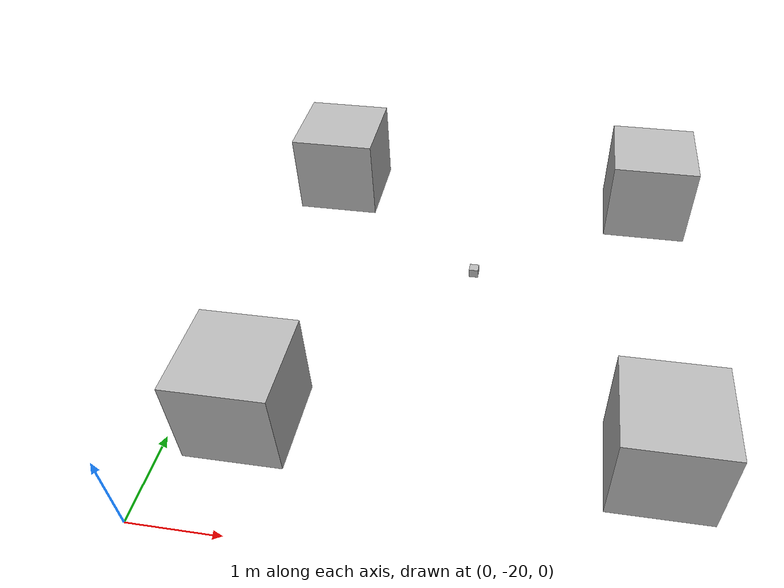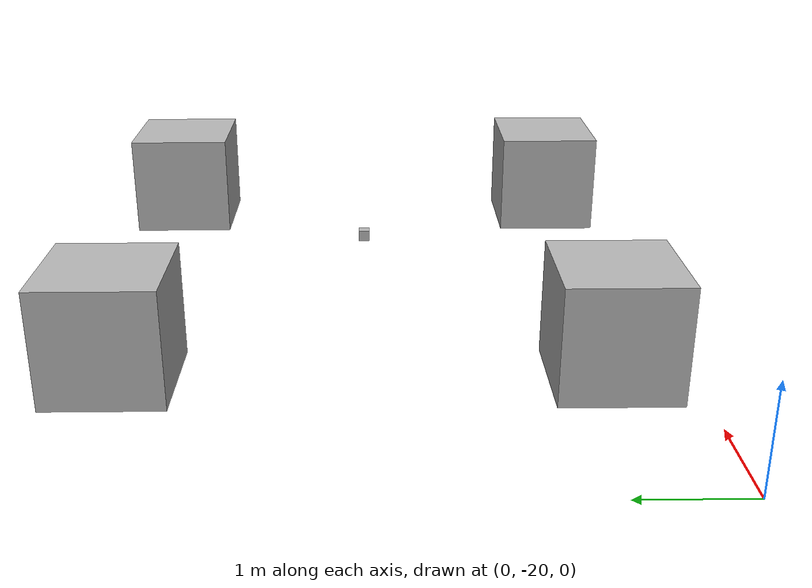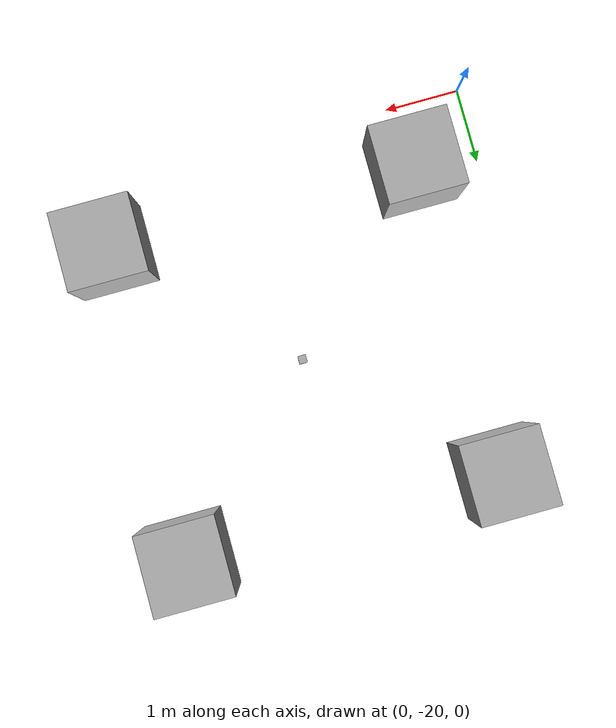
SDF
<sdf version="1.9">
 <world name="buoyant_tethys">
  <scene><ambient>0 1 1 1</ambient><background>0 0.7 0.8 1</background><shadows>true</shadows></scene>
  <physics name="1ms" type="ode">
   <max_step_size>0.001</max_step_size>
   <real_time_factor>1</real_time_factor>
   <real_time_update_rate>1000</real_time_update_rate>
  </physics>
  <plugin filename="ignition-gazebo-sensors-system" name="ignition::gazebo::systems::Sensors">
   <render_engine>ogre</render_engine>
  </plugin>
  <plugin filename="gz-sim-imu-system" name="gz::sim::systems::Imu"/>
  <plugin name="gz::sim::systems::Contact" filename="ignition-gazebo-contact-system"/>
  <plugin name="ignition::gazebo::systems::Physics" filename="ignition-gazebo-physics-system"/>
  <plugin name="ignition::gazebo::systems::UserCommands" filename="ignition-gazebo-user-commands-system"/>
  <plugin name="ignition::gazebo::systems::SceneBroadcaster" filename="ignition-gazebo-scene-broadcaster-system"/>
  <plugin name="ignition::gazebo::systems::Buoyancy" filename="ignition-gazebo-buoyancy-system">
   <uniform_fluid_density>1000</uniform_fluid_density>
  </plugin>
  <gravity>0 0 -9.8</gravity>
  <magnetic_field>6e-06 2.3e-05 -4.2e-05</magnetic_field>
  <atmosphere type="adiabatic"/>
  <include><uri>file://own</uri><name>tethys</name><pose>1 -15 1 0 -0 -1.57</pose></include>
 </world>
</sdf>

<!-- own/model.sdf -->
<sdf version="1.6">
  <model name="own">

 <plugin
    filename="ignition-gazebo-thruster-system"
    name="ignition::gazebo::systems::Thruster">
    <namespace>thruster</namespace>
    <topic>cmd</topic>
    <joint_name>propjoint</joint_name>
    <thrust_coefficient>0.004422</thrust_coefficient>
    <fluid_density>1000</fluid_density>
    <propeller_diameter>0.2</propeller_diameter>
</plugin>
<plugin filename="ignition-gazebo-imu-system"
        name="ignition::gazebo::systems::Imu">
</plugin>
    <pose>0 0 0 0 0 0</pose>
    <link name="base_link">
        <pose>0 0 0 0 0 0</pose>
        <inertial>
        <mass>0</mass>
        <inertia>
          <ixx>0</ixx>
          <iyy>0</iyy>
          <izz>0</izz>
        </inertia>
      </inertial>
          <sensor name="imu_sensor" type="imu">
	    <always_on>1</always_on>
	    <update_rate>1</update_rate>
	    <visualize>true</visualize>
	    <topic>/imu/data</topic>
	     <frame_id>imu_link</frame_id>
	</sensor>
    </link>

      <link name="propeller">
      <pose>2 2 0 0 0 0</pose>
        <mass>0.0000000000001</mass>

      <visual name="propeller_visual">
          <geometry>
              <box>
                  <size>0.1 0.1 0.1</size>
              </box>
          </geometry>
      </visual>
  </link>

      <include>
      <uri>file://bbccuu</uri>
      <name>bcu1</name>
      <pose>0 0 0 0 0 0</pose>
          <plugin
      filename="ignition-gazebo-buoyancy-engine-system"
      name="ignition::gazebo::systems::BuoyancyEngine">
      <link_name>body</link_name>
      <namespace>bcu1c</namespace>
      <min_volume>0.0</min_volume>
      <neutral_volume>0.002</neutral_volume>
      <default_volume>0.002</default_volume>
      <max_volume>0.009</max_volume>
      <max_inflation_rate>0.00001</max_inflation_rate>
    </plugin>
      </include>
      <include>

      <uri>file://bbccuu</uri>
      <name>bcu2</name>
      <pose>0 4 0 0 0 0</pose>
               <plugin
      filename="ignition-gazebo-buoyancy-engine-system"
      name="ignition::gazebo::systems::BuoyancyEngine">
      <link_name>body</link_name>
      <namespace>bcu2c</namespace>
      <min_volume>0.0</min_volume>
      <neutral_volume>0.002</neutral_volume>
      <default_volume>0.002</default_volume>
      <max_volume>0.009</max_volume>
      <max_inflation_rate>0.00001</max_inflation_rate>
    </plugin>
      </include>

            <include>
      <uri>file://bbccuu</uri>
      <name>bcu3</name>
      <pose>4 0 0 0 0 0</pose>
               <plugin
      filename="ignition-gazebo-buoyancy-engine-system"
      name="ignition::gazebo::systems::BuoyancyEngine">
      <link_name>body</link_name>
      <namespace>bcu3c</namespace>
      <min_volume>0.0</min_volume>
      <neutral_volume>0.002</neutral_volume>
      <default_volume>0.002</default_volume>
      <max_volume>0.009</max_volume>
      <max_inflation_rate>0.00001</max_inflation_rate>
    </plugin>
      </include>

            <include>
      <uri>file://bbccuu</uri>
      <name>bcu4</name>
      <pose>4 4 0 0 0 0</pose>
         <plugin
      filename="ignition-gazebo-buoyancy-engine-system"
      name="ignition::gazebo::systems::BuoyancyEngine">
      <link_name>body</link_name>
      <namespace>bcu4c</namespace>
      <min_volume>0.0</min_volume>
      <neutral_volume>0.002</neutral_volume>
      <default_volume>0.002</default_volume>
      <max_volume>0.009</max_volume>
      <max_inflation_rate>0.00001</max_inflation_rate>
    </plugin>
      </include>

    <joint name='fixed_joint3' type='fixed'>
      <parent>base_link</parent>
      <child>bcu1</child>
      <pose>0 0 0 0 0 0</pose> <!-- Joint position is local to body1, since they're already separated -->
    </joint>

    <joint name='fixed_joint' type='fixed'>
      <parent>base_link</parent>
      <child>bcu2</child>
      <pose>0 0 0 0 0 0</pose> <!-- Joint position is local to body1, since they're already separated -->
    </joint>
    <joint name='fixed_joint1' type='fixed'>
      <parent>base_link</parent>
      <child>bcu3</child>
      <pose>0 0 0 0 0 0</pose> <!-- Joint position is local to body1, since they're already separated -->
    </joint>
        <joint name='fixed_joint2' type='fixed'>
      <parent>base_link</parent>
      <child>bcu4</child>
      <pose>0 0 0 0 0 0</pose> <!-- Joint position is local to body1, since they're already separated -->
    </joint>

        <joint name="propjoint" type="revolute">
      <pose>0 0 0 0 0 0</pose>
      <parent>base_link</parent>
      <child>propeller</child>
      <axis>
        <xyz>0 0 1</xyz>
        <limit>
          <lower>-1e+12</lower>
          <upper>1e+12</upper>
          <effort>-1</effort>
          <velocity>-1</velocity>
        </limit>
      </axis>
    </joint>

  </model>
</sdf>

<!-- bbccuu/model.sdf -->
<sdf version="1.6">
  <model name="bbccuu">
    <pose>0 0 0 0 0 0</pose>

   <link name='body'>
      <pose>0 0 0 0 0 0</pose> <!-- Position body1 at the origin -->
      <inertial>
        <mass>1000</mass>
        <inertia>
          <ixx>133.3333</ixx>
          <iyy>133.3333</iyy>
          <izz>133.3333</izz>
        </inertia>
      </inertial>
      <visual name='body_visual'>
        <geometry>
          <box>
            <size>1 1 1</size>
          </box>
        </geometry>
      </visual>
      <collision name='body_collision'>
        <geometry>
          <box>
            <size>1 1 1</size>
          </box>
        </geometry>
      </collision>
    </link>

  </model>

</sdf>
